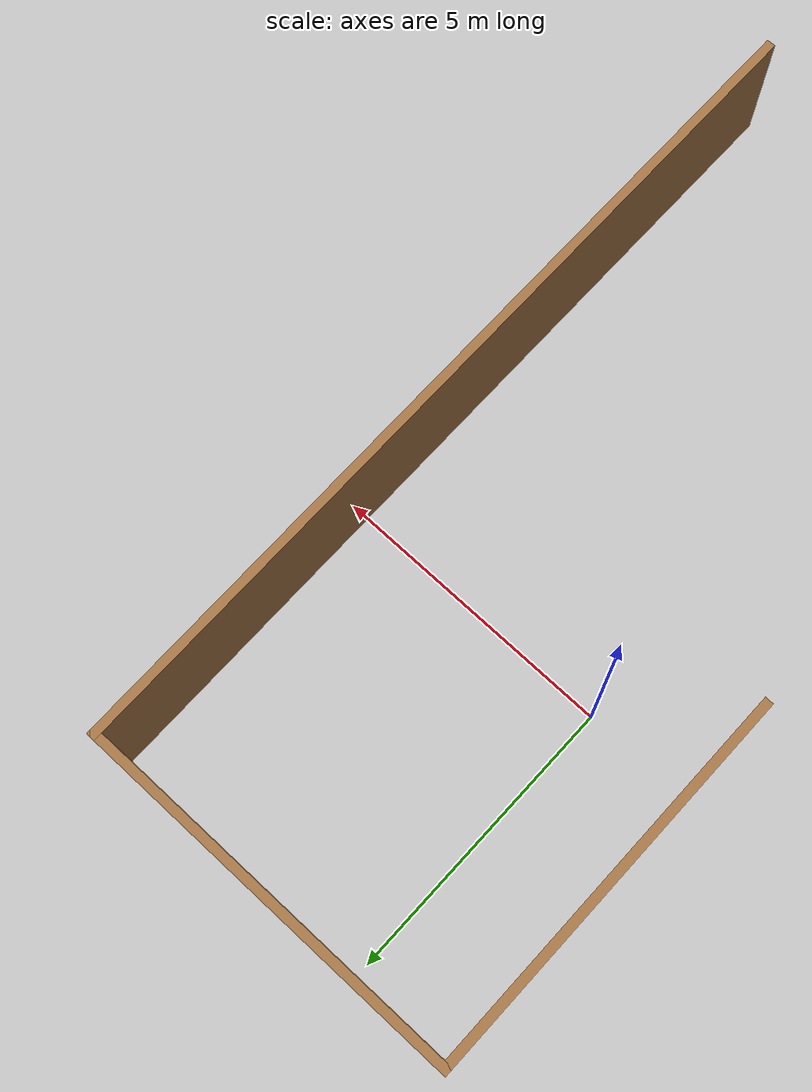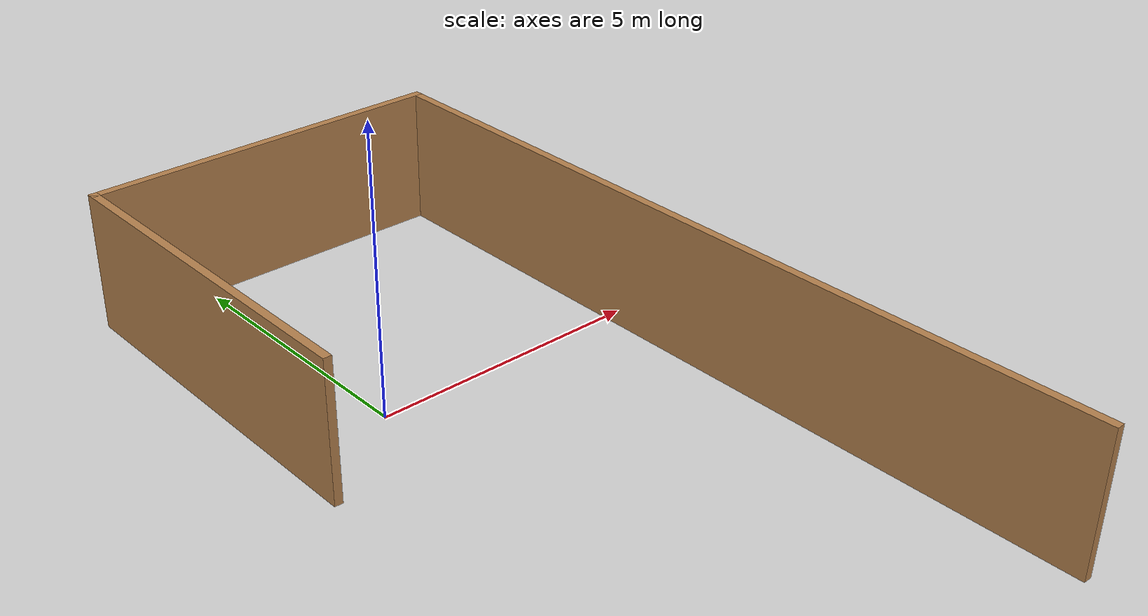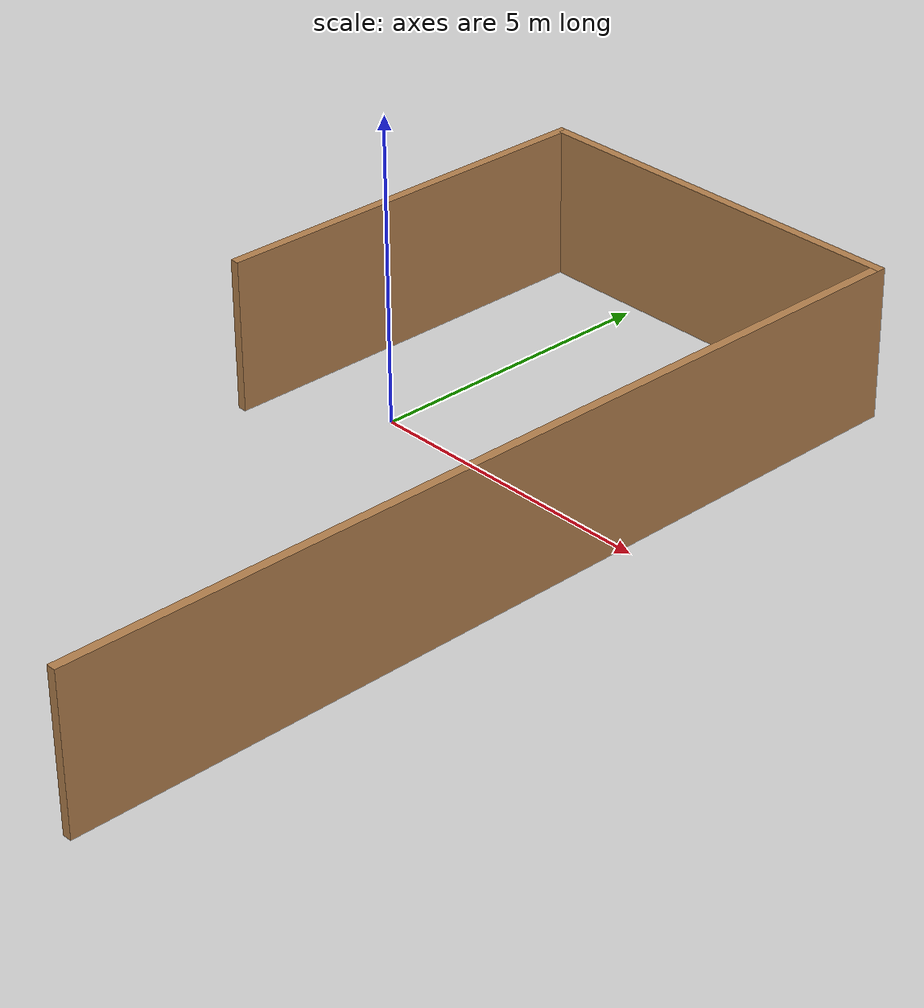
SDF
<sdf version="1.7">
 <model name="mundo_normal1">
  <pose>-1.83298 -2.00796 0 0 -0 0</pose>
  <link name="Wall_0">
   <collision name="Wall_0_Collision">
    <geometry><box><size>6.75 0.15 2.5</size></box></geometry>
    <pose>0 0 1.25 0 -0 0</pose>
   </collision>
   <visual name="Wall_0_Visual">
    <pose>0 0 1.25 0 -0 0</pose>
    <geometry><box><size>6.75 0.15 2.5</size></box></geometry>
    <material>
     <script><uri>file://media/materials/scripts/gazebo.material</uri><name>Gazebo/Wood</name></script>
     <ambient>1 1 1 1</ambient>
    </material>
    <meta><layer>0</layer></meta>
   </visual>
   <pose>0 4 0 0 -0 1.5708</pose>
  </link>
  <link name="Wall_1">
   <collision name="Wall_1_Collision">
    <geometry><box><size>6.75 0.15 2.5</size></box></geometry>
    <pose>0 0 1.25 0 -0 0</pose>
   </collision>
   <visual name="Wall_1_Visual">
    <pose>0 0 1.25 0 -0 0</pose>
    <geometry><box><size>6.75 0.15 2.5</size></box></geometry>
    <material>
     <script><uri>file://media/materials/scripts/gazebo.material</uri><name>Gazebo/Wood</name></script>
     <ambient>1 1 1 1</ambient>
    </material>
    <meta><layer>0</layer></meta>
   </visual>
   <pose>3.3 7.3 0 0 -0 0</pose>
  </link>
  <link name="Wall_2">
   <collision name="Wall_2_Collision">
    <geometry><box><size>14.75 0.15 2.5</size></box></geometry>
    <pose>0 0 1.25 0 -0 0</pose>
   </collision>
   <visual name="Wall_2_Visual">
    <pose>0 0 1.25 0 -0 0</pose>
    <geometry><box><size>14.75 0.15 2.5</size></box></geometry>
    <material>
     <script><uri>file://media/materials/scripts/gazebo.material</uri><name>Gazebo/Wood</name></script>
     <ambient>1 1 1 1</ambient>
    </material>
    <meta><layer>0</layer></meta>
   </visual>
   <pose>6.6 0 0 0 -0 -1.5708</pose>
  </link>
  <static>1</static>
 </model>
</sdf>
